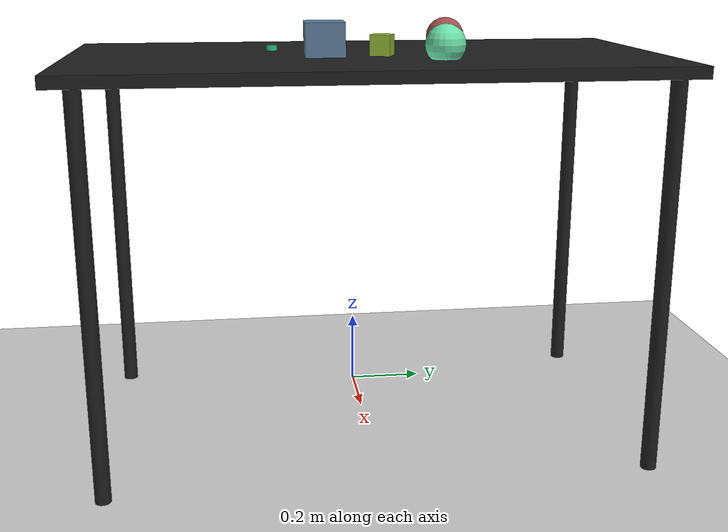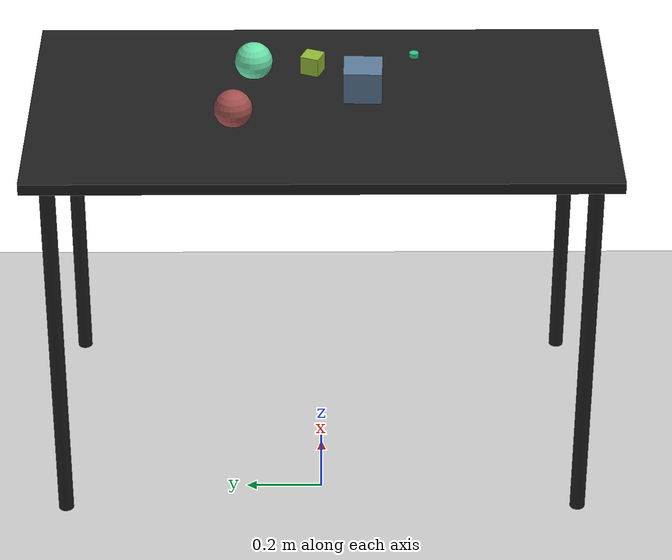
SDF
<?xml version="1.0" ?>
<sdf version="1.6">
  <world name="arm_world">
    <plugin filename="gz-sim-physics-system" name="gz::sim::systems::Physics">
      <engine>
        <filename>libgz-physics-bullet-featherstone-plugin.so</filename>
      </engine>
    </plugin>
    <plugin filename="gz-sim-user-commands-system" name="gz::sim::systems::UserCommands"/>
    <plugin filename="gz-sim-scene-broadcaster-system" name="gz::sim::systems::SceneBroadcaster"/>
    <plugin filename="gz-sim-sensors-system" name="gz::sim::systems::Sensors">
      <render_engine>ogre2</render_engine>
    </plugin>
    <gravity>0.0 0.0 -9.8</gravity>
    <scene>
      <shadows>false</shadows>
    </scene>
    <gui>
      <camera name="user_camera">
        <pose>0.75 -0.75 1.4 0 0.29 2.21</pose>
      </camera>
    </gui>
    <include>
      <uri>https://fuel.gazebosim.org/1.0/OpenRobotics/models/Sun</uri>
    </include>
    <model name="table">
      <static>true</static>
      <include>
        <uri>model://table</uri>
      </include>
      <pose>0.29 0 0 0 0 1.5708</pose>
    </model>
    <model name="ground_plane">
      <static>true</static>
      <link name="link">
        <collision name="collision">
          <geometry>
            <plane>
              <normal>0 0 1</normal>
            </plane>
          </geometry>
          <surface>
            <friction>
              <ode>
                <mu>1.0</mu>
                <mu2>1.0</mu2>
              </ode>
            </friction>
          </surface>
        </collision>
        <visual name="visual">
          <geometry>
            <plane>
              <normal>0 0 1</normal>
              <size>100 100</size>
            </plane>
          </geometry>
          <material>
            <ambient>0.8 0.8 0.8 1</ambient>
            <diffuse>0.8 0.8 0.8 1</diffuse>
            <specular>0.8 0.8 0.8 1</specular>
          </material>
        </visual>
      </link>
    </model>
    <model name="cube_m_0">
      <pose>0.443 0.022 1.05 0 0 5.9</pose>
      <link name="cube_m_0_link">
        <collision name="cube_m_0_collision">
          <geometry>
            <box>
              <size>0.05 0.05 0.05</size>
            </box>
          </geometry>
        </collision>
        <visual name="cube_m_0_visual">
          <geometry>
            <box>
              <size>0.05 0.05 0.05</size>
            </box>
          </geometry>
          <material>
            <ambient>0.58 0.73 0.21 1</ambient>
            <diffuse>0.58 0.73 0.21 1</diffuse>
          </material>
        </visual>
        <velocity_decay>
          <linear>1</linear>
          <angular>1</angular>
        </velocity_decay>
      </link>
    </model>
    <model name="cylinder_s_1">
      <pose>0.486 -0.245 1.05 0 0 0.52</pose>
      <link name="cylinder_s_1_link">
        <collision name="cylinder_s_1_collision">
          <geometry>
            <cylinder>
              <radius>0.0125</radius>
              <length>0.0125</length>
            </cylinder>
          </geometry>
        </collision>
        <visual name="cylinder_s_1_visual">
          <geometry>
            <cylinder>
              <radius>0.0125</radius>
              <length>0.0125</length>
            </cylinder>
          </geometry>
          <material>
            <ambient>0.18 0.78 0.51 1</ambient>
            <diffuse>0.18 0.78 0.51 1</diffuse>
          </material>
        </visual>
        <velocity_decay>
          <linear>1</linear>
          <angular>1</angular>
        </velocity_decay>
      </link>
    </model>
    <model name="sphere_l_2">
      <pose>0.454 0.176 1.05 0 0 0.1</pose>
      <link name="sphere_l_2_link">
        <collision name="sphere_l_2_collision">
          <geometry>
            <sphere>
              <radius>0.05</radius>
            </sphere>
          </geometry>
        </collision>
        <visual name="sphere_l_2_visual">
          <geometry>
            <sphere>
              <radius>0.05</radius>
            </sphere>
          </geometry>
          <material>
            <ambient>0.42 0.89 0.67 1</ambient>
            <diffuse>0.42 0.89 0.67 1</diffuse>
          </material>
        </visual>
        <velocity_decay>
          <linear>1</linear>
          <angular>1</angular>
        </velocity_decay>
      </link>
    </model>
    <model name="cube_l_3">
      <pose>0.338 -0.108 1.05 0 0 3.11</pose>
      <link name="cube_l_3_link">
        <collision name="cube_l_3_collision">
          <geometry>
            <box>
              <size>0.1 0.1 0.1</size>
            </box>
          </geometry>
        </collision>
        <visual name="cube_l_3_visual">
          <geometry>
            <box>
              <size>0.1 0.1 0.1</size>
            </box>
          </geometry>
          <material>
            <ambient>0.37 0.49 0.61 1</ambient>
            <diffuse>0.37 0.49 0.61 1</diffuse>
          </material>
        </visual>
        <velocity_decay>
          <linear>1</linear>
          <angular>1</angular>
        </velocity_decay>
      </link>
    </model>
    <model name="sphere_l_4">
      <pose>0.203 0.225 1.05 0 0 1.14</pose>
      <link name="sphere_l_4_link">
        <collision name="sphere_l_4_collision">
          <geometry>
            <sphere>
              <radius>0.05</radius>
            </sphere>
          </geometry>
        </collision>
        <visual name="sphere_l_4_visual">
          <geometry>
            <sphere>
              <radius>0.05</radius>
            </sphere>
          </geometry>
          <material>
            <ambient>0.64 0.32 0.31 1</ambient>
            <diffuse>0.64 0.32 0.31 1</diffuse>
          </material>
        </visual>
        <velocity_decay>
          <linear>1</linear>
          <angular>1</angular>
        </velocity_decay>
      </link>
    </model>
  </world>
</sdf>

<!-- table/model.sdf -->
<sdf version="1.5">
  <model name="table">
    <static>true</static>
    <link name="link">
      <collision name="surface">
        <pose>0 0 1.0 0 0 0</pose>
        <geometry>
          <box>
            <size>1.5 0.8 0.03</size>
          </box>
        </geometry>
        <surface>
          <friction>
            <ode>
              <mu>0.6</mu>
              <mu2>0.6</mu2>
            </ode>
          </friction>
        </surface>
      </collision>
      <visual name="surface">
        <pose>0 0 1.0 0 0 0</pose>
        <geometry>
          <box>
            <size>1.5 0.8 0.03</size>
          </box>
        </geometry>
        <material>
          <script>
            <uri>file://media/materials/scripts/gazebo.material</uri>
            <name>Gazebo/Black</name>
          </script>
        </material>
      </visual>
      <collision name="front_left_leg">
        <pose>0.68 0.38 0.5 0 0 0</pose>
        <geometry>
          <cylinder>
            <radius>0.02</radius>
            <length>1.0</length>
          </cylinder>
        </geometry>
      </collision>
      <visual name="front_left_leg">
        <pose>0.68 0.38 0.5 0 0 0</pose>
        <geometry>
          <cylinder>
            <radius>0.02</radius>
            <length>1.0</length>
          </cylinder>
        </geometry>
        <material>
          <script>
            <uri>file://media/materials/scripts/gazebo.material</uri>
            <name>Gazebo/Black</name>
          </script>
        </material>
      </visual>
      <collision name="front_right_leg">
        <pose>0.68 -0.38 0.5 0 0 0</pose>
        <geometry>
          <cylinder>
            <radius>0.02</radius>
            <length>1.0</length>
          </cylinder>
        </geometry>
      </collision>
      <visual name="front_right_leg">
        <pose>0.68 -0.38 0.5 0 0 0</pose>
        <geometry>
          <cylinder>
            <radius>0.02</radius>
            <length>1.0</length>
          </cylinder>
        </geometry>
        <material>
          <script>
            <uri>file://media/materials/scripts/gazebo.material</uri>
            <name>Gazebo/Black</name>
          </script>
        </material>
      </visual>
      <collision name="back_right_leg">
        <pose>-0.68 -0.38 0.5 0 0 0</pose>
        <geometry>
          <cylinder>
            <radius>0.02</radius>
            <length>1.0</length>
          </cylinder>
        </geometry>
      </collision>
      <visual name="back_right_leg">
        <pose>-0.68 -0.38 0.5 0 0 0</pose>
        <geometry>
          <cylinder>
            <radius>0.02</radius>
            <length>1.0</length>
          </cylinder>
        </geometry>
        <material>
          <script>
            <uri>file://media/materials/scripts/gazebo.material</uri>
            <name>Gazebo/Black</name>
          </script>
        </material>
      </visual>
      <collision name="back_left_leg">
        <pose>-0.68 0.38 0.5 0 0 0</pose>
        <geometry>
          <cylinder>
            <radius>0.02</radius>
            <length>1.0</length>
          </cylinder>
        </geometry>
      </collision>
      <visual name="back_left_leg">
        <pose>-0.68 0.38 0.5 0 0 0</pose>
        <geometry>
          <cylinder>
            <radius>0.02</radius>
            <length>1.0</length>
          </cylinder>
        </geometry>
        <material>
          <script>
            <uri>file://media/materials/scripts/gazebo.material</uri>
            <name>Gazebo/Black</name>
          </script>
        </material>
      </visual>
    </link>
  </model>
</sdf>
